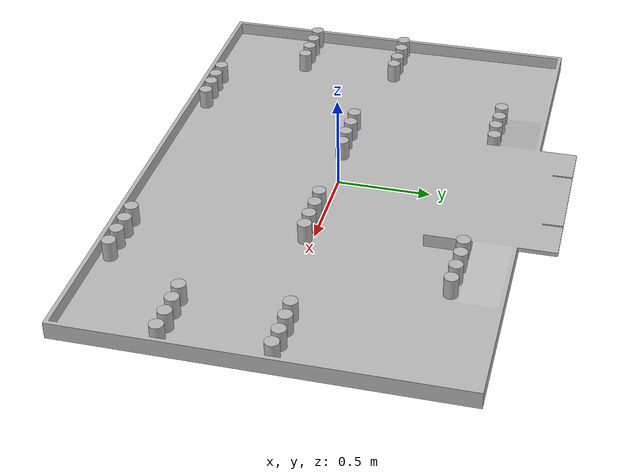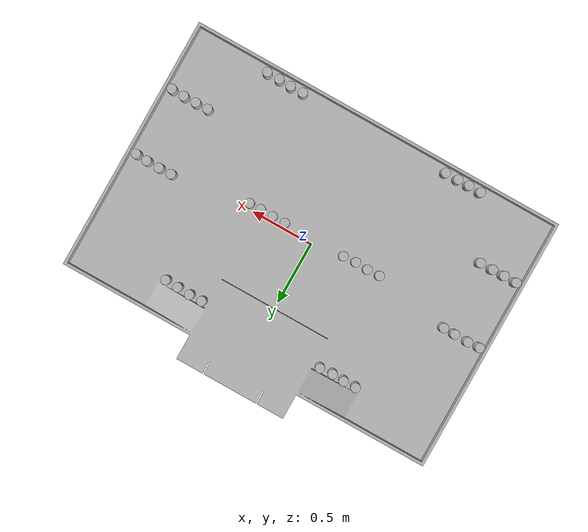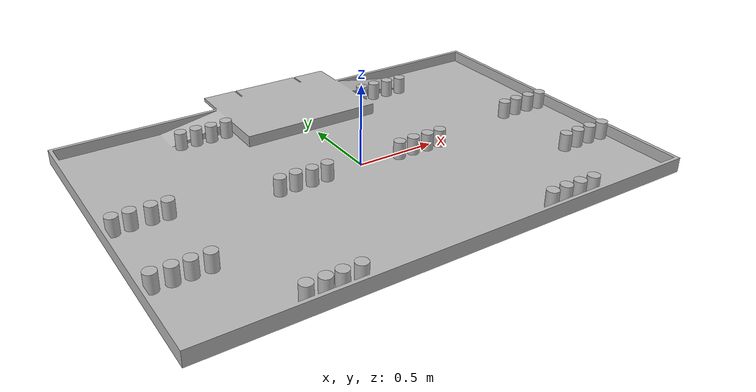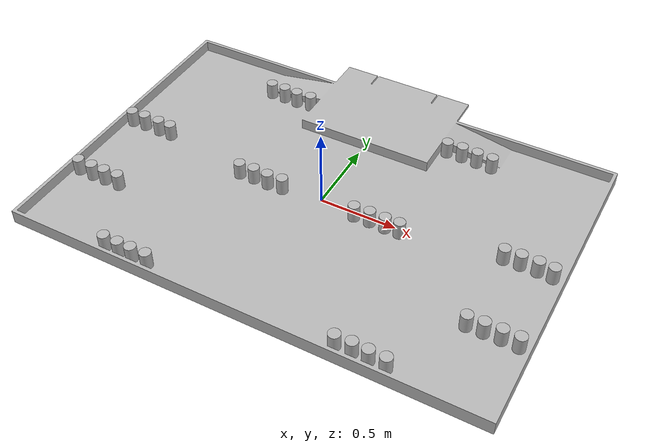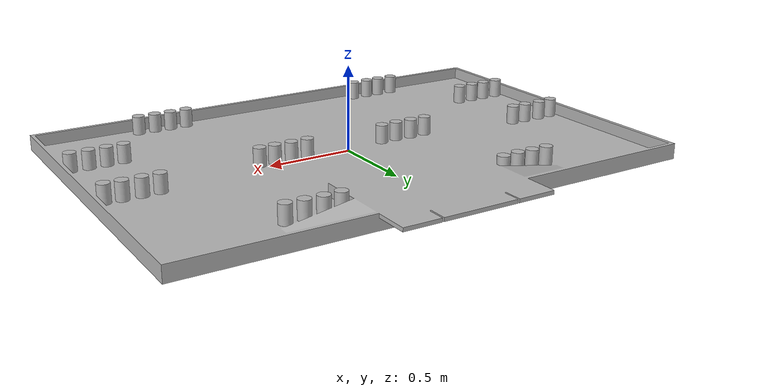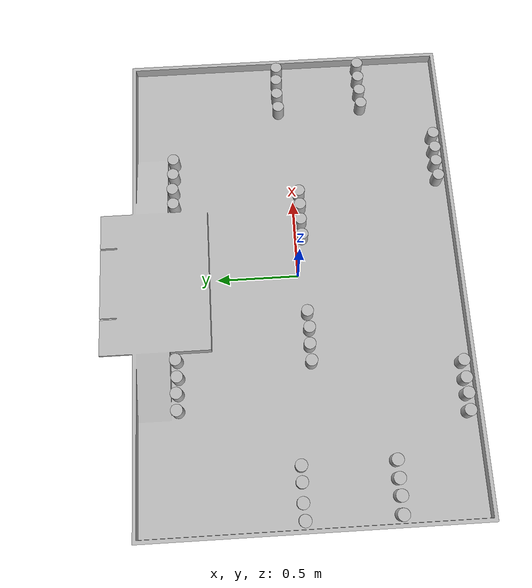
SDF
<sdf version="1.10">
 <world name="default">
  <gravity>0 0 -9.8000000000000007</gravity>
  <magnetic_field>6.0000000000000002e-06 2.3e-05 -4.1999999999999998e-05</magnetic_field>
  <atmosphere type="adiabatic"/>
  <physics type="ode">
   <max_step_size>0.001</max_step_size>
   <real_time_factor>1</real_time_factor>
   <real_time_update_rate>1000</real_time_update_rate>
  </physics>
  <scene>
   <ambient>0.400000006 0.400000006 0.400000006 1</ambient>
   <background>0.699999988 0.699999988 0.699999988 1</background>
   <shadows>true</shadows>
  </scene>
  <audio><device>default</device></audio>
  <spherical_coordinates>
   <surface_model>EARTH_WGS84</surface_model>
   <latitude_deg>0</latitude_deg>
   <longitude_deg>0</longitude_deg>
   <elevation>0</elevation>
   <heading_deg>0</heading_deg>
  </spherical_coordinates>
  <plugin name="gz::sim::systems::Physics" filename="gz-sim-physics-system"/>
  <plugin name="gz::sim::systems::Sensors" filename="gz-sim-sensors-system">
   <render_engine>ogre2</render_engine>
  </plugin>
  <plugin filename="gz-sim-imu-system" name="gz::sim::systems::Imu"/>
  <plugin name="gz::sim::systems::UserCommands" filename="gz-sim-user-commands-system"/>
  <plugin name="gz::sim::systems::SceneBroadcaster" filename="gz-sim-scene-broadcaster-system"/>
  <plugin name="gz::sim::systems::MyPlugin" filename="libgz-match-plugin.so"/>
  <include><uri>model://Table2025</uri><name>Table_2024</name></include>
  <include>
   <uri>model://Can</uri>
   <name>Can</name>
   <pose>-0.25068315155170301 -0.039200628891831263 0 0 0 0</pose>
  </include>
  <include>
   <uri>model://Can</uri>
   <name>Can_0</name>
   <pose>-0.35221898728607243 -0.044808617988725208 0 0 0 0</pose>
  </include>
  <include>
   <uri>model://Can</uri>
   <name>Can_1</name>
   <pose>-0.45286431464902649 -0.040053838648059226 0 0 0 0</pose>
  </include>
  <include>
   <uri>model://Can</uri>
   <name>Can_2</name>
   <pose>-0.55375782697724529 -0.043772160476831024 0 0 0 0</pose>
  </include>
  <include>
   <uri>model://Can</uri>
   <name>Can_3</name>
   <pose>-1.452663262827592 0.056330706304445144 0 0 0 0</pose>
  </include>
  <include>
   <uri>model://Can</uri>
   <name>Can_4</name>
   <pose>-1.3571504225813884 0.061815657787472167 0 0 0 0</pose>
  </include>
  <include>
   <uri>model://Can</uri>
   <name>Can_5</name>
   <pose>-1.2446275068744761 0.059799522911209158 0 0 0 0</pose>
  </include>
  <include>
   <uri>model://Can</uri>
   <name>Can_6</name>
   <pose>-1.1523689360883169 0.058553175663850626 0 0 0 0</pose>
  </include>
  <include>
   <uri>model://Can</uri>
   <name>Can_7</name>
   <pose>-0.80212478276114441 0.75885762924626721 0 0 0 0</pose>
  </include>
  <include>
   <uri>model://Can</uri>
   <name>Can_8</name>
   <pose>-0.70267304298050182 0.75971065021176121 0 0 0 0</pose>
  </include>
  <include>
   <uri>model://Can</uri>
   <name>Can_9</name>
   <pose>-0.60636852375048278 0.75455492557296533 0 0 0 0</pose>
  </include>
  <include>
   <uri>model://Can</uri>
   <name>Can_10</name>
   <pose>-0.50370230633076374 0.76158001881923987 0 0 0 0</pose>
  </include>
  <include>
   <uri>model://Can</uri>
   <name>Can_11</name>
   <pose>0.49610452452074644 0.75907115601275676 0 0 0 0</pose>
  </include>
  <include>
   <uri>model://Can</uri>
   <name>Can_12</name>
   <pose>0.59668342499745919 0.76224201638360478 0 0 0 0</pose>
  </include>
  <include>
   <uri>model://Can</uri>
   <name>Can_13</name>
   <pose>0.69986482071552669 0.75731162647751327 0 0 0 0</pose>
  </include>
  <include>
   <uri>model://Can</uri>
   <name>Can_14</name>
   <pose>0.80188884982676423 0.75301006663356729 0 0 0 0</pose>
  </include>
  <include>
   <uri>model://Can</uri>
   <name>Can_15</name>
   <pose>1.4450458324516871 0.052949713359482176 0 0 0 0</pose>
  </include>
  <include>
   <uri>model://Can</uri>
   <name>Can_16</name>
   <pose>1.3525390027044639 0.058819312173554628 0 0 0 0</pose>
  </include>
  <include>
   <uri>model://Can</uri>
   <name>Can_17</name>
   <pose>1.2488765718869237 0.059764268555141331 0 0 0 0</pose>
  </include>
  <include>
   <uri>model://Can</uri>
   <name>Can_18</name>
   <pose>1.1490897807115887 0.056600227747524157 0 0 0 0</pose>
  </include>
  <include>
   <uri>model://Can</uri>
   <name>Can_19</name>
   <pose>1.1491197605580346 -0.49120721236000164 0 0 0 0</pose>
  </include>
  <include>
   <uri>model://Can</uri>
   <name>Can_20</name>
   <pose>1.2474908669314557 -0.48923291283962544 0 0 0 0</pose>
  </include>
  <include>
   <uri>model://Can</uri>
   <name>Can_21</name>
   <pose>1.3479782716996356 -0.48853706522059875 0 0 0 0</pose>
  </include>
  <include>
   <uri>model://Can</uri>
   <name>Can_22</name>
   <pose>1.4499048904477614 -0.49165901061792827 0 0 0 0</pose>
  </include>
  <include>
   <uri>model://Can</uri>
   <name>Can_23</name>
   <pose>0.8987447743250403 -0.94181928489068178 0 0 0 0</pose>
  </include>
  <include>
   <uri>model://Can</uri>
   <name>Can_24</name>
   <pose>0.79691656852453963 -0.94097340225728687 0 0 0 0</pose>
  </include>
  <include>
   <uri>model://Can</uri>
   <name>Can_25</name>
   <pose>0.69937529460710279 -0.93653613710692207 0 0 0 0</pose>
  </include>
  <include>
   <uri>model://Can</uri>
   <name>Can_26</name>
   <pose>0.59784548754463329 -0.9386851087594642 0 0 0 0</pose>
  </include>
  <include>
   <uri>model://Can</uri>
   <name>Can_27</name>
   <pose>-0.60496826110007118 -0.9412447738326809 0 0 0 0</pose>
  </include>
  <include>
   <uri>model://Can</uri>
   <name>Can_28</name>
   <pose>-0.70889697603791058 -0.94220421161066492 0 0 0 0</pose>
  </include>
  <include>
   <uri>model://Can</uri>
   <name>Can_29</name>
   <pose>-0.79940165883993275 -0.94363686920665568 0 0 0 0</pose>
  </include>
  <include>
   <uri>model://Can</uri>
   <name>Can_30</name>
   <pose>-0.89911875851700351 -0.9410330648498898 0 0 0 0</pose>
  </include>
  <include>
   <uri>model://Can</uri>
   <name>Can_31</name>
   <pose>-1.1526380797130489 -0.4898348031378511 0 0 0 0</pose>
  </include>
  <include>
   <uri>model://Can</uri>
   <name>Can_32</name>
   <pose>-1.2545731218061229 -0.49088168494842621 0 0 0 0</pose>
  </include>
  <include>
   <uri>model://Can</uri>
   <name>Can_33</name>
   <pose>-1.3497520965771472 -0.49234995014767413 0 0 0 0</pose>
  </include>
  <include>
   <uri>model://Can</uri>
   <name>Can_34</name>
   <pose>-1.4523078807463325 -0.49128988795337009 0 0 0 0</pose>
  </include>
  <include>
   <uri>model://Can</uri>
   <name>Can_35</name>
   <pose>0.24415142529954101 -0.041274378529825864 0 0 0 0</pose>
  </include>
  <include>
   <uri>model://Can</uri>
   <name>Can_36</name>
   <pose>0.3465572448097064 -0.038499409363570922 0 0 0 0</pose>
  </include>
  <include>
   <uri>model://Can</uri>
   <name>Can_37</name>
   <pose>0.44823190867532159 -0.04087312086549863 0 0 0 0</pose>
  </include>
  <include>
   <uri>model://Can</uri>
   <name>Can_38</name>
   <pose>0.54120329621512431 -0.039788836595094412 0 0 0 0</pose>
  </include>
  <light name="sun" type="directional">
   <pose>0 0 10 0 0 0</pose>
   <intensity>1</intensity>
   <direction>-0.5 0.10000000000000001 -0.90000000000000002</direction>
   <diffuse>0.800000012 0.800000012 0.800000012 1</diffuse>
   <specular>0.200000003 0.200000003 0.200000003 1</specular>
   <attenuation>
    <range>1000</range>
    <linear>0.01</linear>
    <constant>0.90000000000000002</constant>
    <quadratic>0.001</quadratic>
   </attenuation>
   <spot><inner_angle>0</inner_angle><outer_angle>0</outer_angle><falloff>0</falloff></spot>
  </light>
 </world>
</sdf>

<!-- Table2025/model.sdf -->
<sdf version='1.7'>
  <model name='Table_2024'>
   	<static>true</static>
    <plugin filename="gz-sim-label-system" name="gz::sim::systems::Label">
        <label>1</label>
    </plugin>
    <link name='link_0'>
			<gravity>0</gravity>
      <inertial>
        <inertia>
          <ixx>0.166667</ixx>
          <ixy>0</ixy>
          <ixz>0</ixz>
          <iyy>0.166667</iyy>
          <iyz>0</iyz>
          <izz>0.166667</izz>
        </inertia>
      </inertial>
      <pose>0 0 0 0 0 0</pose>
      <visual name='visual'>
        <pose>0 0 0 0 -0 0</pose>
        <geometry>
          <mesh>
            <uri>TableMainV3.dae</uri>
            <scale>1 1 1</scale>
          </mesh>
        </geometry>
        <transparency>0</transparency>
        <cast_shadows>1</cast_shadows>
      </visual>
      <collision name='collision'>
        <laser_retro>0</laser_retro>
        <max_contacts>10</max_contacts>
        <pose>0 0 0 0 -0 0</pose>
        <geometry>
          <mesh>
            <uri>TableMainV3.dae</uri>
            <scale>1 1 1</scale>
          </mesh>
        </geometry>
        <surface>
          <friction>
            <ode>
              <mu>1</mu>
              <mu2>1</mu2>
              <fdir1>0 0 0</fdir1>
              <slip1>0</slip1>
              <slip2>0</slip2>
            </ode>
            <torsional>
              <coefficient>1</coefficient>
              <patch_radius>0</patch_radius>
              <surface_radius>0</surface_radius>
              <use_patch_radius>1</use_patch_radius>
              <ode>
                <slip>0</slip>
              </ode>
            </torsional>
          </friction>

          <contact>
            <collide_without_contact>0</collide_without_contact>
            <collide_without_contact_bitmask>1</collide_without_contact_bitmask>
            <collide_bitmask>1</collide_bitmask>
            <ode>
              <soft_cfm>0</soft_cfm>
              <soft_erp>0.2</soft_erp>
              <kp>1e+13</kp>
              <kd>1</kd>
              <max_vel>0.01</max_vel>
              <min_depth>0.01</min_depth>
            </ode>
            <bullet>
              <split_impulse>1</split_impulse>
              <split_impulse_penetration_threshold>-0.01</split_impulse_penetration_threshold>
              <soft_cfm>0</soft_cfm>
              <soft_erp>0.2</soft_erp>
              <kp>1e+13</kp>
              <kd>1</kd>
            </bullet>
          </contact>
        </surface>
      </collision>
    </link>
    <pose>0 0 0 0 0 0</pose>

    <static>0</static>
    <allow_auto_disable>1</allow_auto_disable>
  </model>
</sdf>

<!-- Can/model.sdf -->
<sdf version='1.7'>
  <model name='Can'>
   	<static>false</static>
    <plugin filename="gz-sim-label-system" name="gz::sim::systems::Label">
        <label>11</label>
    </plugin>
    <link name='link_0'>
			<gravity>1</gravity>
      <inertial>
        <pose>0 0 0.02 0 0 0</pose>
        <mass>0.025</mass>
        <inertia>
          <ixx>2.5e-5</ixx>
          <ixy>0</ixy>
          <ixz>0</ixz>
          <iyy>2.5e-5</iyy>
          <iyz>0</iyz>
          <izz>8e-6</izz>
        </inertia>
      </inertial>
      <pose>0 0 0 0 0 0</pose>
      <visual name='visual'>
        <pose>0 0 0 0 -0 0</pose>
        <geometry>
          <mesh>
            <uri>canv2.dae</uri>
            <scale>1.0 1.0 1.0</scale>
          </mesh>
        </geometry>
        <transparency>0</transparency>
        <cast_shadows>1</cast_shadows>
      </visual>

      <collision name='collision'>
        <laser_retro>0</laser_retro>
        <max_contacts>3</max_contacts>
        <pose>0 0 0.0545 0 -0 0</pose>
        <geometry>
          <cylinder>
            <radius>0.0365</radius>
            <length>0.109</length>
          </cylinder>
        </geometry>
        <surface>
          <friction>
            <ode>
              <mu>0.9</mu>
              <mu2>0.9</mu2>
            </ode>
          </friction>

          <contact>
            <ode>
              <soft_cfm>0</soft_cfm>
              <soft_erp>0.2</soft_erp>
              <kp>1e1</kp>
              <kd>1e9</kd>
              <max_vel>0.01</max_vel>
              <min_depth>0.001</min_depth>
            </ode>
          </contact>
        </surface>
      </collision>
    </link>
    <pose>0 0 0 0 0 0</pose>

    <allow_auto_disable>1</allow_auto_disable>
  </model>
</sdf>
